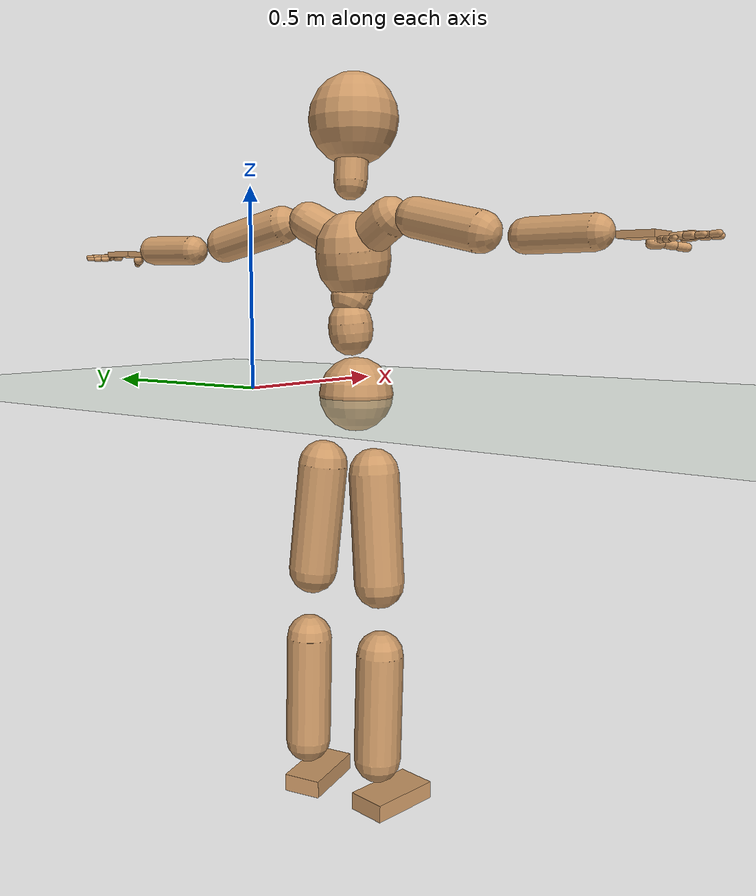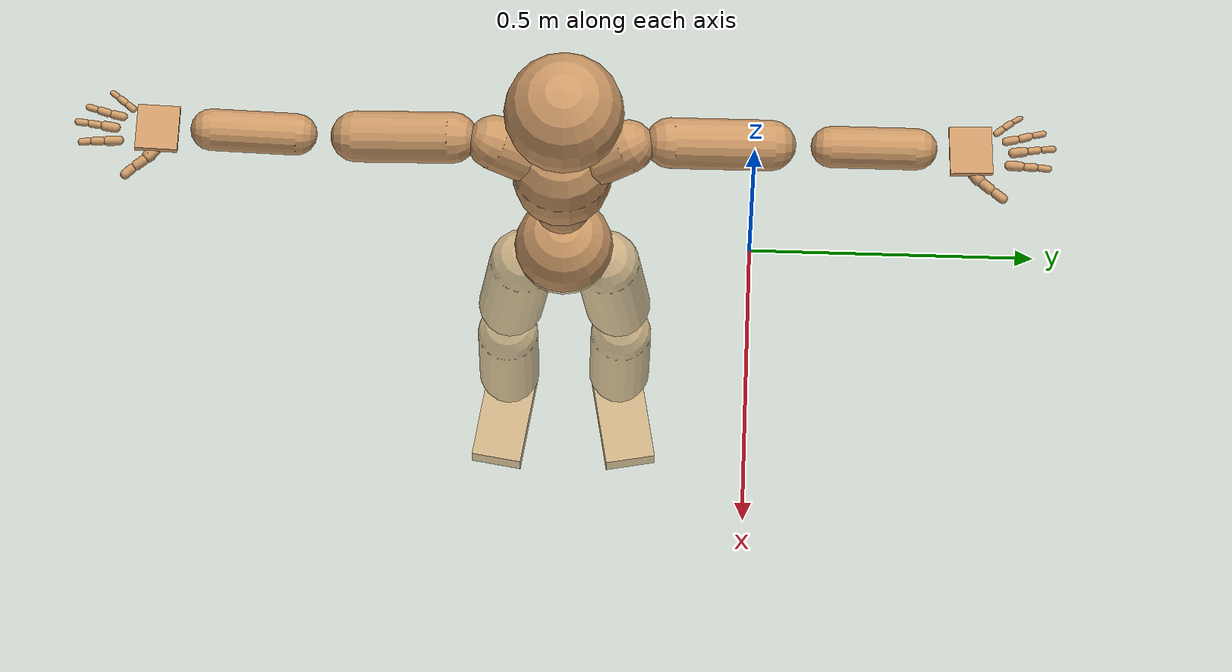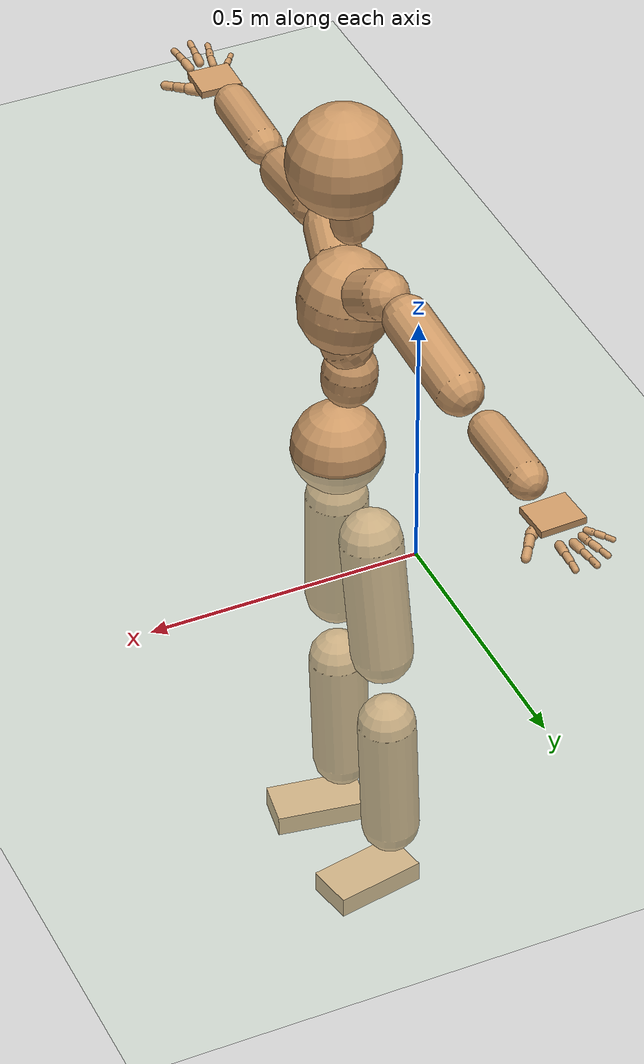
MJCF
<mujoco model="humanoid">
  <compiler coordinate="local" angle="radian"/>
  <default>
    <joint damping="0.0" armature="0.01" stiffness="0.0" limited="true"/>
    <geom conaffinity="1" condim="3" contype="7" margin="0.001" rgba="0.8 0.6 .4 1"/>
  </default>
  <asset>
    <texture type="skybox" builtin="gradient" rgb1=".4 .5 .6" rgb2="0 0 0" width="100" height="100"/>
    <texture builtin="flat" height="1278" mark="cross" markrgb="1 1 1" name="texgeom" random="0.01" rgb1="0.8 0.6 0.4" rgb2="0.8 0.6 0.4" type="cube" width="127"/>
    <texture builtin="checker" height="100" name="texplane" rgb1="0 0 0" rgb2="0.8 0.8 0.8" type="2d" width="100"/>
    <material name="MatPlane" reflectance="0.5" shininess="1" specular="1" texrepeat="60 60" texture="texplane"/>
    <material name="geom" texture="texgeom" texuniform="true"/>
  </asset>
  <worldbody>
    <light cutoff="100" diffuse="1 1 1" dir="-0 0 -1.3" directional="true" exponent="1" pos="0 0 1.3" specular=".1 .1 .1"/>
    <geom conaffinity="1" condim="3" name="floor" pos="0 0 0" rgba="0.8 0.9 0.8 1" size="100 100 .2" type="plane" material="MatPlane"/>
    <body name="Pelvis" pos="0.0007 -0.3269 0.0049">
      <freejoint name="Pelvis"/>
      <geom type="sphere" contype="1" conaffinity="1" density="500" size="0.0870" pos="0.0000 0.0000 0.0000" name="Pelvis"/>
      <body name="L_Hip" pos="-0.027 0.0674 -0.0851">
        <joint name="L_Hip_x" type="hinge" pos="0 0 0" axis="1 0 0" stiffness="800" damping="80" armature="0.02" range="-180.0000 180.0000"/>
        <joint name="L_Hip_y" type="hinge" pos="0 0 0" axis="0 1 0" stiffness="800" damping="80" armature="0.02" range="-180.0000 180.0000"/>
        <joint name="L_Hip_z" type="hinge" pos="0 0 0" axis="0 0 1" stiffness="800" damping="80" armature="0.02" range="-180.0000 180.0000"/>
        <geom type="capsule" contype="1" conaffinity="1" density="500" fromto="-0.0044 0.0071 -0.0858 -0.0175 0.0282 -0.3432" size="0.059" name="L_Hip"/>
        <body name="L_Knee" pos="-0.0219 0.0353 -0.429">
          <joint name="L_Knee_x" type="hinge" pos="0 0 0" axis="1 0 0" stiffness="800" damping="80" armature="0.02" range="-180.0000 180.0000"/>
          <joint name="L_Knee_y" type="hinge" pos="0 0 0" axis="0 1 0" stiffness="800" damping="80" armature="0.02" range="-180.0000 180.0000"/>
          <joint name="L_Knee_z" type="hinge" pos="0 0 0" axis="0 0 1" stiffness="800" damping="80" armature="0.02" range="-180.0000 180.0000"/>
          <geom type="capsule" contype="1" conaffinity="1" density="500" fromto="-0.0034 -0.0010 -0.0864 -0.0136 -0.0038 -0.3455" size="0.0554" name="L_Knee"/>
          <body name="L_Ankle" pos="-0.017 -0.0048 -0.4319">
            <joint name="L_Ankle_x" type="hinge" pos="0 0 0" axis="1 0 0" stiffness="800" damping="80" armature="0.02" range="-180.0000 180.0000"/>
            <joint name="L_Ankle_y" type="hinge" pos="0 0 0" axis="0 1 0" stiffness="800" damping="80" armature="0.02" range="-180.0000 180.0000"/>
            <joint name="L_Ankle_z" type="hinge" pos="0 0 0" axis="0 0 1" stiffness="800" damping="80" armature="0.02" range="-180.0000 180.0000"/>
            <geom type="box" contype="1" conaffinity="1" density="500" pos="0.0557 0.0104 -0.0255" size="0.0884 0.0461 0.0208" quat="0.9957 0.0000 0.0000 0.0924" name="L_Ankle"/>
            <body name="L_Toe" pos="0.1115 0.0209 -0.051">
              <joint name="L_Toe_x" type="hinge" pos="0 0 0" axis="1 0 0" stiffness="500" damping="50" armature="0.02" range="-180.0000 180.0000"/>
              <joint name="L_Toe_y" type="hinge" pos="0 0 0" axis="0 1 0" stiffness="500" damping="50" armature="0.02" range="-180.0000 180.0000"/>
              <joint name="L_Toe_z" type="hinge" pos="0 0 0" axis="0 0 1" stiffness="500" damping="50" armature="0.02" range="-180.0000 180.0000"/>
              <geom type="box" contype="1" conaffinity="1" density="500" pos="0.0000 0.0000 0.0250" size="0.0009 0.0023 0.001" quat="0.9951 0.0000 0.0000 0.0992" name="L_Toe"/>
            </body>
          </body>
        </body>
      </body>
      <body name="R_Hip" pos="-0.0285 -0.0673 -0.092">
        <joint name="R_Hip_x" type="hinge" pos="0 0 0" axis="1 0 0" stiffness="800" damping="80" armature="0.02" range="-180.0000 180.0000"/>
        <joint name="R_Hip_y" type="hinge" pos="0 0 0" axis="0 1 0" stiffness="800" damping="80" armature="0.02" range="-180.0000 180.0000"/>
        <joint name="R_Hip_z" type="hinge" pos="0 0 0" axis="0 0 1" stiffness="800" damping="80" armature="0.02" range="-180.0000 180.0000"/>
        <geom type="capsule" contype="1" conaffinity="1" density="500" fromto="-0.0031 -0.0078 -0.0849 -0.0125 -0.0311 -0.3397" size="0.0589" name="R_Hip"/>
        <body name="R_Knee" pos="-0.0157 -0.0388 -0.4246">
          <joint name="R_Knee_x" type="hinge" pos="0 0 0" axis="1 0 0" stiffness="800" damping="80" armature="0.02" range="-180.0000 180.0000"/>
          <joint name="R_Knee_y" type="hinge" pos="0 0 0" axis="0 1 0" stiffness="800" damping="80" armature="0.02" range="-180.0000 180.0000"/>
          <joint name="R_Knee_z" type="hinge" pos="0 0 0" axis="0 0 1" stiffness="800" damping="80" armature="0.02" range="-180.0000 180.0000"/>
          <geom type="capsule" contype="1" conaffinity="1" density="500" fromto="-0.0026 0.0000 -0.0847 -0.0105 0.0001 -0.3386" size="0.0554" name="R_Knee"/>
          <body name="R_Ankle" pos="-0.0131 0.0001 -0.4233">
            <joint name="R_Ankle_x" type="hinge" pos="0 0 0" axis="1 0 0" stiffness="800" damping="80" armature="0.02" range="-180.0000 180.0000"/>
            <joint name="R_Ankle_y" type="hinge" pos="0 0 0" axis="0 1 0" stiffness="800" damping="80" armature="0.02" range="-180.0000 180.0000"/>
            <joint name="R_Ankle_z" type="hinge" pos="0 0 0" axis="0 0 1" stiffness="800" damping="80" armature="0.02" range="-180.0000 180.0000"/>
            <geom type="box" contype="1" conaffinity="1" density="500" pos="0.0524 -0.0082 -0.0272" size="0.0884 0.0461 0.0208" quat="0.9970 0.0000 0.0000 -0.0776" name="R_Ankle"/>
            <body name="R_Toe" pos="0.1048 -0.0164 -0.0544">
              <joint name="R_Toe_x" type="hinge" pos="0 0 0" axis="1 0 0" stiffness="500" damping="50" armature="0.02" range="-180.0000 180.0000"/>
              <joint name="R_Toe_y" type="hinge" pos="0 0 0" axis="0 1 0" stiffness="500" damping="50" armature="0.02" range="-180.0000 180.0000"/>
              <joint name="R_Toe_z" type="hinge" pos="0 0 0" axis="0 0 1" stiffness="500" damping="50" armature="0.02" range="-180.0000 180.0000"/>
              <geom type="box" contype="1" conaffinity="1" density="500" pos="0.0000 0.0000 0.0267" size="0.0009 0.0023 0.001" quat="0.9977 0.0000 0.0000 -0.0671" name="R_Toe"/>
            </body>
          </body>
        </body>
      </body>
      <body name="Torso" pos="-0.0202 -0.0048 0.0979">
        <joint name="Torso_x" type="hinge" pos="0 0 0" axis="1 0 0" stiffness="1000" damping="100" armature="0.02" range="-180.0000 180.0000"/>
        <joint name="Torso_y" type="hinge" pos="0 0 0" axis="0 1 0" stiffness="1000" damping="100" armature="0.02" range="-180.0000 180.0000"/>
        <joint name="Torso_z" type="hinge" pos="0 0 0" axis="0 0 1" stiffness="1000" damping="100" armature="0.02" range="-180.0000 180.0000"/>
        <geom type="capsule" contype="1" conaffinity="1" density="500" fromto="-0.0041 0.0042 0.0670 -0.0027 0.0028 0.0446" size="0.0513" name="Torso"/>
        <body name="Spine" pos="-0.0069 0.007 0.1116">
          <joint name="Spine_x" type="hinge" pos="0 0 0" axis="1 0 0" stiffness="1000" damping="100" armature="0.02" range="-180.0000 180.0000"/>
          <joint name="Spine_y" type="hinge" pos="0 0 0" axis="0 1 0" stiffness="1000" damping="100" armature="0.02" range="-180.0000 180.0000"/>
          <joint name="Spine_z" type="hinge" pos="0 0 0" axis="0 0 1" stiffness="1000" damping="100" armature="0.02" range="-180.0000 180.0000"/>
          <geom type="capsule" contype="1" conaffinity="1" density="500" fromto="0.0133 -0.0022 0.0249 0.0089 -0.0014 0.0166" size="0.0481" name="Spine"/>
          <body name="Chest" pos="0.0222 -0.0036 0.0416">
            <joint name="Chest_x" type="hinge" pos="0 0 0" axis="1 0 0" stiffness="1000" damping="100" armature="0.02" range="-180.0000 180.0000"/>
            <joint name="Chest_y" type="hinge" pos="0 0 0" axis="0 1 0" stiffness="1000" damping="100" armature="0.02" range="-180.0000 180.0000"/>
            <joint name="Chest_z" type="hinge" pos="0 0 0" axis="0 0 1" stiffness="1000" damping="100" armature="0.02" range="-180.0000 180.0000"/>
            <geom type="capsule" contype="1" conaffinity="1" density="500" fromto="-0.0133 -0.0013 0.0818 -0.0089 -0.0009 0.0545" size="0.0862" name="Chest"/>
            <body name="Neck" pos="-0.03 -0.0048 0.1927">
              <joint name="Neck_x" type="hinge" pos="0 0 0" axis="1 0 0" stiffness="500" damping="50" armature="0.02" range="-180.0000 180.0000"/>
              <joint name="Neck_y" type="hinge" pos="0 0 0" axis="0 1 0" stiffness="500" damping="50" armature="0.02" range="-180.0000 180.0000"/>
              <joint name="Neck_z" type="hinge" pos="0 0 0" axis="0 0 1" stiffness="500" damping="50" armature="0.02" range="-180.0000 180.0000"/>
              <geom type="capsule" contype="1" conaffinity="1" density="500" fromto="0.0048 0.0016 0.0352 0.0193 0.0064 0.1410" size="0.0381" name="Neck"/>
              <body name="Head" pos="0.0241 0.0079 0.1762">
                <joint name="Head_x" type="hinge" pos="0 0 0" axis="1 0 0" stiffness="500" damping="50" armature="0.02" range="-180.0000 180.0000"/>
                <joint name="Head_y" type="hinge" pos="0 0 0" axis="0 1 0" stiffness="500" damping="50" armature="0.02" range="-180.0000 180.0000"/>
                <joint name="Head_z" type="hinge" pos="0 0 0" axis="0 0 1" stiffness="500" damping="50" armature="0.02" range="-180.0000 180.0000"/>
                <geom type="sphere" contype="1" conaffinity="1" density="500" size="0.1023" pos="0.0000 0.0000 0.0000" name="Head"/>
              </body>
            </body>
            <body name="L_Thorax" pos="-0.0155 0.0462 0.1103">
              <joint name="L_Thorax_x" type="hinge" pos="0 0 0" axis="1 0 0" stiffness="500" damping="50" armature="0.02" range="-180.0000 180.0000"/>
              <joint name="L_Thorax_y" type="hinge" pos="0 0 0" axis="0 1 0" stiffness="500" damping="50" armature="0.02" range="-180.0000 180.0000"/>
              <joint name="L_Thorax_z" type="hinge" pos="0 0 0" axis="0 0 1" stiffness="500" damping="50" armature="0.02" range="-180.0000 180.0000"/>
              <geom type="capsule" contype="1" conaffinity="1" density="500" fromto="-0.0045 0.0162 0.0090 -0.0179 0.0648 0.0362" size="0.0464" name="L_Thorax"/>
              <body name="L_Shoulder" pos="-0.0224 0.0811 0.0452">
                <joint name="L_Shoulder_x" type="hinge" pos="0 0 0" axis="1 0 0" stiffness="500" damping="50" armature="0.02" range="-180.0000 180.0000"/>
                <joint name="L_Shoulder_y" type="hinge" pos="0 0 0" axis="0 1 0" stiffness="500" damping="50" armature="0.02" range="-180.0000 180.0000"/>
                <joint name="L_Shoulder_z" type="hinge" pos="0 0 0" axis="0 0 1" stiffness="500" damping="50" armature="0.02" range="-180.0000 180.0000"/>
                <geom type="capsule" contype="1" conaffinity="1" density="500" fromto="-0.0054 0.0572 -0.0133 -0.0214 0.2288 -0.0531" size="0.0443" name="L_Shoulder"/>
                <body name="L_Elbow" pos="-0.0268 0.286 -0.0663">
                  <joint name="L_Elbow_x" type="hinge" pos="0 0 0" axis="1 0 0" stiffness="500" damping="50" armature="0.02" range="-720.0000 720.0000"/>
                  <joint name="L_Elbow_y" type="hinge" pos="0 0 0" axis="0 1 0" stiffness="500" damping="50" armature="0.02" range="-720.0000 720.0000"/>
                  <joint name="L_Elbow_z" type="hinge" pos="0 0 0" axis="0 0 1" stiffness="500" damping="50" armature="0.02" range="-720.0000 720.0000"/>
                  <geom type="capsule" contype="1" conaffinity="1" density="500" fromto="0.0004 0.0487 0.0011 0.0016 0.1949 0.0046" size="0.036" name="L_Elbow"/>
                  <body name="L_Wrist" pos="0.002 0.2436 0.0057">
                    <joint name="L_Wrist_x" type="hinge" pos="0 0 0" axis="1 0 0" stiffness="300" damping="30" armature="0.02" range="-180.0000 180.0000"/>
                    <joint name="L_Wrist_y" type="hinge" pos="0 0 0" axis="0 1 0" stiffness="300" damping="30" armature="0.02" range="-180.0000 180.0000"/>
                    <joint name="L_Wrist_z" type="hinge" pos="0 0 0" axis="0 0 1" stiffness="300" damping="30" armature="0.02" range="-180.0000 180.0000"/>
                    <geom type="box" contype="1" conaffinity="1" density="500" pos="-0.0021 0.0453 -0.0090" size="0.0367 0.0427 0.0067" quat="0.7232 0.0000 0.0000 -0.6906" name="L_Wrist"/>
                    <body name="L_Index1" pos="0.019 0.1059 -0.0162">
                      <joint name="L_Index1_x" type="hinge" pos="0 0 0" axis="1 0 0" stiffness="100" damping="10" armature="0.02" range="-180.0000 180.0000"/>
                      <joint name="L_Index1_y" type="hinge" pos="0 0 0" axis="0 1 0" stiffness="100" damping="10" armature="0.02" range="-180.0000 180.0000"/>
                      <joint name="L_Index1_z" type="hinge" pos="0 0 0" axis="0 0 1" stiffness="100" damping="10" armature="0.02" range="-180.0000 180.0000"/>
                      <geom type="capsule" contype="1" conaffinity="1" density="500" fromto="0.0005 0.0063 0.0005 0.0021 0.0253 0.0020" size="0.0084" name="L_Index1"/>
                      <body name="L_Index2" pos="0.0027 0.0316 0.0025">
                        <joint name="L_Index2_x" type="hinge" pos="0 0 0" axis="1 0 0" stiffness="100" damping="10" armature="0.02" range="-180.0000 180.0000"/>
                        <joint name="L_Index2_y" type="hinge" pos="0 0 0" axis="0 1 0" stiffness="100" damping="10" armature="0.02" range="-180.0000 180.0000"/>
                        <joint name="L_Index2_z" type="hinge" pos="0 0 0" axis="0 0 1" stiffness="100" damping="10" armature="0.02" range="-180.0000 180.0000"/>
                        <geom type="capsule" contype="1" conaffinity="1" density="500" fromto="0.0001 0.0045 -0.0003 0.0004 0.0180 -0.0012" size="0.0071" name="L_Index2"/>
                        <body name="L_Index3" pos="0.0005 0.0225 -0.0015">
                          <joint name="L_Index3_x" type="hinge" pos="0 0 0" axis="1 0 0" stiffness="100" damping="10" armature="0.02" range="-180.0000 180.0000"/>
                          <joint name="L_Index3_y" type="hinge" pos="0 0 0" axis="0 1 0" stiffness="100" damping="10" armature="0.02" range="-180.0000 180.0000"/>
                          <joint name="L_Index3_z" type="hinge" pos="0 0 0" axis="0 0 1" stiffness="100" damping="10" armature="0.02" range="-180.0000 180.0000"/>
                          <geom type="capsule" contype="1" conaffinity="1" density="500" fromto="0.0005 0.0049 0.0001 0.0020 0.0196 0.0004" size="0.006" name="L_Index3"/>
                        </body>
                      </body>
                    </body>
                    <body name="L_Middle1" pos="-0.0024 0.1129 -0.0139">
                      <joint name="L_Middle1_x" type="hinge" pos="0 0 0" axis="1 0 0" stiffness="100" damping="10" armature="0.02" range="-180.0000 180.0000"/>
                      <joint name="L_Middle1_y" type="hinge" pos="0 0 0" axis="0 1 0" stiffness="100" damping="10" armature="0.02" range="-180.0000 180.0000"/>
                      <joint name="L_Middle1_z" type="hinge" pos="0 0 0" axis="0 0 1" stiffness="100" damping="10" armature="0.02" range="-180.0000 180.0000"/>
                      <geom type="capsule" contype="1" conaffinity="1" density="500" fromto="-0.0008 0.0060 0.0002 -0.0032 0.0240 0.0009" size="0.0085" name="L_Middle1"/>
                      <body name="L_Middle2" pos="-0.0039 0.03 0.0012">
                        <joint name="L_Middle2_x" type="hinge" pos="0 0 0" axis="1 0 0" stiffness="100" damping="10" armature="0.02" range="-180.0000 180.0000"/>
                        <joint name="L_Middle2_y" type="hinge" pos="0 0 0" axis="0 1 0" stiffness="100" damping="10" armature="0.02" range="-180.0000 180.0000"/>
                        <joint name="L_Middle2_z" type="hinge" pos="0 0 0" axis="0 0 1" stiffness="100" damping="10" armature="0.02" range="-180.0000 180.0000"/>
                        <geom type="capsule" contype="1" conaffinity="1" density="500" fromto="-0.0007 0.0047 -0.0001 -0.0030 0.0188 -0.0003" size="0.0064" name="L_Middle2"/>
                        <body name="L_Middle3" pos="-0.0037 0.0235 -0.0004">
                          <joint name="L_Middle3_x" type="hinge" pos="0 0 0" axis="1 0 0" stiffness="100" damping="10" armature="0.02" range="-180.0000 180.0000"/>
                          <joint name="L_Middle3_y" type="hinge" pos="0 0 0" axis="0 1 0" stiffness="100" damping="10" armature="0.02" range="-180.0000 180.0000"/>
                          <joint name="L_Middle3_z" type="hinge" pos="0 0 0" axis="0 0 1" stiffness="100" damping="10" armature="0.02" range="-180.0000 180.0000"/>
                          <geom type="capsule" contype="1" conaffinity="1" density="500" fromto="-0.0003 0.0051 0.0003 -0.0014 0.0204 0.0013" size="0.0058" name="L_Middle3"/>
                        </body>
                      </body>
                    </body>
                    <body name="L_Pinky1" pos="-0.0389 0.0875 -0.0207">
                      <joint name="L_Pinky1_x" type="hinge" pos="0 0 0" axis="1 0 0" stiffness="100" damping="10" armature="0.02" range="-180.0000 180.0000"/>
                      <joint name="L_Pinky1_y" type="hinge" pos="0 0 0" axis="0 1 0" stiffness="100" damping="10" armature="0.02" range="-180.0000 180.0000"/>
                      <joint name="L_Pinky1_z" type="hinge" pos="0 0 0" axis="0 0 1" stiffness="100" damping="10" armature="0.02" range="-180.0000 180.0000"/>
                      <geom type="capsule" contype="1" conaffinity="1" density="500" fromto="-0.0023 0.0029 -0.0001 -0.0094 0.0115 -0.0003" size="0.0061" name="L_Pinky1"/>
                      <body name="L_Pinky2" pos="-0.0117 0.0144 -0.0003">
                        <joint name="L_Pinky2_x" type="hinge" pos="0 0 0" axis="1 0 0" stiffness="100" damping="10" armature="0.02" range="-180.0000 180.0000"/>
                        <joint name="L_Pinky2_y" type="hinge" pos="0 0 0" axis="0 1 0" stiffness="100" damping="10" armature="0.02" range="-180.0000 180.0000"/>
                        <joint name="L_Pinky2_z" type="hinge" pos="0 0 0" axis="0 0 1" stiffness="100" damping="10" armature="0.02" range="-180.0000 180.0000"/>
                        <geom type="capsule" contype="1" conaffinity="1" density="500" fromto="-0.0023 0.0029 -0.0001 -0.0093 0.0118 -0.0006" size="0.006" name="L_Pinky2"/>
                        <body name="L_Pinky3" pos="-0.0116 0.0147 -0.0007">
                          <joint name="L_Pinky3_x" type="hinge" pos="0 0 0" axis="1 0 0" stiffness="100" damping="10" armature="0.02" range="-180.0000 180.0000"/>
                          <joint name="L_Pinky3_y" type="hinge" pos="0 0 0" axis="0 1 0" stiffness="100" damping="10" armature="0.02" range="-180.0000 180.0000"/>
                          <joint name="L_Pinky3_z" type="hinge" pos="0 0 0" axis="0 0 1" stiffness="100" damping="10" armature="0.02" range="-180.0000 180.0000"/>
                          <geom type="capsule" contype="1" conaffinity="1" density="500" fromto="-0.0019 0.0033 0.0003 -0.0077 0.0134 0.0010" size="0.0048" name="L_Pinky3"/>
                        </body>
                      </body>
                    </body>
                    <body name="L_Ring1" pos="-0.0237 0.1008 -0.0161">
                      <joint name="L_Ring1_x" type="hinge" pos="0 0 0" axis="1 0 0" stiffness="100" damping="10" armature="0.02" range="-180.0000 180.0000"/>
                      <joint name="L_Ring1_y" type="hinge" pos="0 0 0" axis="0 1 0" stiffness="100" damping="10" armature="0.02" range="-180.0000 180.0000"/>
                      <joint name="L_Ring1_z" type="hinge" pos="0 0 0" axis="0 0 1" stiffness="100" damping="10" armature="0.02" range="-180.0000 180.0000"/>
                      <geom type="capsule" contype="1" conaffinity="1" density="500" fromto="-0.0010 0.0055 0.0003 -0.0041 0.0219 0.0013" size="0.0073" name="L_Ring1"/>
                      <body name="L_Ring2" pos="-0.0052 0.0273 0.0017">
                        <joint name="L_Ring2_x" type="hinge" pos="0 0 0" axis="1 0 0" stiffness="100" damping="10" armature="0.02" range="-180.0000 180.0000"/>
                        <joint name="L_Ring2_y" type="hinge" pos="0 0 0" axis="0 1 0" stiffness="100" damping="10" armature="0.02" range="-180.0000 180.0000"/>
                        <joint name="L_Ring2_z" type="hinge" pos="0 0 0" axis="0 0 1" stiffness="100" damping="10" armature="0.02" range="-180.0000 180.0000"/>
                        <geom type="capsule" contype="1" conaffinity="1" density="500" fromto="-0.0014 0.0045 -0.0002 -0.0056 0.0179 -0.0006" size="0.0069" name="L_Ring2"/>
                        <body name="L_Ring3" pos="-0.0071 0.0224 -0.0008">
                          <joint name="L_Ring3_x" type="hinge" pos="0 0 0" axis="1 0 0" stiffness="100" damping="10" armature="0.02" range="-180.0000 180.0000"/>
                          <joint name="L_Ring3_y" type="hinge" pos="0 0 0" axis="0 1 0" stiffness="100" damping="10" armature="0.02" range="-180.0000 180.0000"/>
                          <joint name="L_Ring3_z" type="hinge" pos="0 0 0" axis="0 0 1" stiffness="100" damping="10" armature="0.02" range="-180.0000 180.0000"/>
                          <geom type="capsule" contype="1" conaffinity="1" density="500" fromto="-0.0010 0.0049 0.0002 -0.0040 0.0195 0.0010" size="0.0055" name="L_Ring3"/>
                        </body>
                      </body>
                    </body>
                    <body name="L_Thumb1" pos="0.0252 0.0457 -0.0229">
                      <joint name="L_Thumb1_x" type="hinge" pos="0 0 0" axis="1 0 0" stiffness="100" damping="10" armature="0.02" range="-180.0000 180.0000"/>
                      <joint name="L_Thumb1_y" type="hinge" pos="0 0 0" axis="0 1 0" stiffness="100" damping="10" armature="0.02" range="-180.0000 180.0000"/>
                      <joint name="L_Thumb1_z" type="hinge" pos="0 0 0" axis="0 0 1" stiffness="100" damping="10" armature="0.02" range="-180.0000 180.0000"/>
                      <geom type="capsule" contype="1" conaffinity="1" density="500" fromto="0.0046 0.0035 0.0001 0.0184 0.0142 0.0003" size="0.0114" name="L_Thumb1"/>
                      <body name="L_Thumb2" pos="0.0231 0.0177 0.0004">
                        <joint name="L_Thumb2_x" type="hinge" pos="0 0 0" axis="1 0 0" stiffness="100" damping="10" armature="0.02" range="-180.0000 180.0000"/>
                        <joint name="L_Thumb2_y" type="hinge" pos="0 0 0" axis="0 1 0" stiffness="100" damping="10" armature="0.02" range="-180.0000 180.0000"/>
                        <joint name="L_Thumb2_z" type="hinge" pos="0 0 0" axis="0 0 1" stiffness="100" damping="10" armature="0.02" range="-180.0000 180.0000"/>
                        <geom type="capsule" contype="1" conaffinity="1" density="500" fromto="0.0028 0.0042 -0.0011 0.0114 0.0167 -0.0044" size="0.009" name="L_Thumb2"/>
                        <body name="L_Thumb3" pos="0.0142 0.0209 -0.0055">
                          <joint name="L_Thumb3_x" type="hinge" pos="0 0 0" axis="1 0 0" stiffness="100" damping="10" armature="0.02" range="-180.0000 180.0000"/>
                          <joint name="L_Thumb3_y" type="hinge" pos="0 0 0" axis="0 1 0" stiffness="100" damping="10" armature="0.02" range="-180.0000 180.0000"/>
                          <joint name="L_Thumb3_z" type="hinge" pos="0 0 0" axis="0 0 1" stiffness="100" damping="10" armature="0.02" range="-180.0000 180.0000"/>
                          <geom type="capsule" contype="1" conaffinity="1" density="500" fromto="0.0032 0.0046 -0.0007 0.0130 0.0183 -0.0028" size="0.0083" name="L_Thumb3"/>
                        </body>
                      </body>
                    </body>
                  </body>
                </body>
              </body>
            </body>
            <body name="R_Thorax" pos="-0.0209 -0.0479 0.1059">
              <joint name="R_Thorax_x" type="hinge" pos="0 0 0" axis="1 0 0" stiffness="500" damping="50" armature="0.02" range="-180.0000 180.0000"/>
              <joint name="R_Thorax_y" type="hinge" pos="0 0 0" axis="0 1 0" stiffness="500" damping="50" armature="0.02" range="-180.0000 180.0000"/>
              <joint name="R_Thorax_z" type="hinge" pos="0 0 0" axis="0 0 1" stiffness="500" damping="50" armature="0.02" range="-180.0000 180.0000"/>
              <geom type="capsule" contype="1" conaffinity="1" density="500" fromto="-0.0034 -0.0174 0.0097 -0.0137 -0.0698 0.0388" size="0.0473" name="R_Thorax"/>
              <body name="R_Shoulder" pos="-0.0171 -0.0872 0.0484">
                <joint name="R_Shoulder_x" type="hinge" pos="0 0 0" axis="1 0 0" stiffness="500" damping="50" armature="0.02" range="-180.0000 180.0000"/>
                <joint name="R_Shoulder_y" type="hinge" pos="0 0 0" axis="0 1 0" stiffness="500" damping="50" armature="0.02" range="-180.0000 180.0000"/>
                <joint name="R_Shoulder_z" type="hinge" pos="0 0 0" axis="0 0 1" stiffness="500" damping="50" armature="0.02" range="-180.0000 180.0000"/>
                <geom type="capsule" contype="1" conaffinity="1" density="500" fromto="-0.0039 -0.0553 -0.0123 -0.0154 -0.2214 -0.0492" size="0.0446" name="R_Shoulder"/>
                <body name="R_Elbow" pos="-0.0193 -0.2767 -0.0615">
                  <joint name="R_Elbow_x" type="hinge" pos="0 0 0" axis="1 0 0" stiffness="500" damping="50" armature="0.02" range="-720.0000 720.0000"/>
                  <joint name="R_Elbow_y" type="hinge" pos="0 0 0" axis="0 1 0" stiffness="500" damping="50" armature="0.02" range="-720.0000 720.0000"/>
                  <joint name="R_Elbow_z" type="hinge" pos="0 0 0" axis="0 0 1" stiffness="500" damping="50" armature="0.02" range="-720.0000 720.0000"/>
                  <geom type="capsule" contype="1" conaffinity="1" density="500" fromto="-0.0013 -0.0490 0.0003 -0.0053 -0.1958 0.0012" size="0.0362" name="R_Elbow"/>
                  <body name="R_Wrist" pos="-0.0067 -0.2448 0.0015">
                    <joint name="R_Wrist_x" type="hinge" pos="0 0 0" axis="1 0 0" stiffness="300" damping="30" armature="0.02" range="-180.0000 180.0000"/>
                    <joint name="R_Wrist_y" type="hinge" pos="0 0 0" axis="0 1 0" stiffness="300" damping="30" armature="0.02" range="-180.0000 180.0000"/>
                    <joint name="R_Wrist_z" type="hinge" pos="0 0 0" axis="0 0 1" stiffness="300" damping="30" armature="0.02" range="-180.0000 180.0000"/>
                    <geom type="box" contype="1" conaffinity="1" density="500" pos="-0.0014 -0.0446 -0.0087" size="0.0367 0.04 0.0069" quat="0.7184 0.0000 0.0000 0.6957" name="R_Wrist"/>
                    <body name="R_Index1" pos="0.0203 -0.1045 -0.0155">
                      <joint name="R_Index1_x" type="hinge" pos="0 0 0" axis="1 0 0" stiffness="100" damping="10" armature="0.02" range="-180.0000 180.0000"/>
                      <joint name="R_Index1_y" type="hinge" pos="0 0 0" axis="0 1 0" stiffness="100" damping="10" armature="0.02" range="-180.0000 180.0000"/>
                      <joint name="R_Index1_z" type="hinge" pos="0 0 0" axis="0 0 1" stiffness="100" damping="10" armature="0.02" range="-180.0000 180.0000"/>
                      <geom type="capsule" contype="1" conaffinity="1" density="500" fromto="0.0005 -0.0063 0.0005 0.0021 -0.0253 0.0020" size="0.0084" name="R_Index1"/>
                      <body name="R_Index2" pos="0.0027 -0.0316 0.0025">
                        <joint name="R_Index2_x" type="hinge" pos="0 0 0" axis="1 0 0" stiffness="100" damping="10" armature="0.02" range="-180.0000 180.0000"/>
                        <joint name="R_Index2_y" type="hinge" pos="0 0 0" axis="0 1 0" stiffness="100" damping="10" armature="0.02" range="-180.0000 180.0000"/>
                        <joint name="R_Index2_z" type="hinge" pos="0 0 0" axis="0 0 1" stiffness="100" damping="10" armature="0.02" range="-180.0000 180.0000"/>
                        <geom type="capsule" contype="1" conaffinity="1" density="500" fromto="0.0001 -0.0045 -0.0003 0.0004 -0.0180 -0.0012" size="0.0071" name="R_Index2"/>
                        <body name="R_Index3" pos="0.0005 -0.0225 -0.0015">
                          <joint name="R_Index3_x" type="hinge" pos="0 0 0" axis="1 0 0" stiffness="100" damping="10" armature="0.02" range="-180.0000 180.0000"/>
                          <joint name="R_Index3_y" type="hinge" pos="0 0 0" axis="0 1 0" stiffness="100" damping="10" armature="0.02" range="-180.0000 180.0000"/>
                          <joint name="R_Index3_z" type="hinge" pos="0 0 0" axis="0 0 1" stiffness="100" damping="10" armature="0.02" range="-180.0000 180.0000"/>
                          <geom type="capsule" contype="1" conaffinity="1" density="500" fromto="0.0005 -0.0041 0.0001 0.0020 -0.0164 0.0004" size="0.0063" name="R_Index3"/>
                        </body>
                      </body>
                    </body>
                    <body name="R_Middle1" pos="-0.0011 -0.1115 -0.0132">
                      <joint name="R_Middle1_x" type="hinge" pos="0 0 0" axis="1 0 0" stiffness="100" damping="10" armature="0.02" range="-180.0000 180.0000"/>
                      <joint name="R_Middle1_y" type="hinge" pos="0 0 0" axis="0 1 0" stiffness="100" damping="10" armature="0.02" range="-180.0000 180.0000"/>
                      <joint name="R_Middle1_z" type="hinge" pos="0 0 0" axis="0 0 1" stiffness="100" damping="10" armature="0.02" range="-180.0000 180.0000"/>
                      <geom type="capsule" contype="1" conaffinity="1" density="500" fromto="-0.0008 -0.0060 0.0002 -0.0032 -0.0240 0.0009" size="0.0085" name="R_Middle1"/>
                      <body name="R_Middle2" pos="-0.0039 -0.03 0.0012">
                        <joint name="R_Middle2_x" type="hinge" pos="0 0 0" axis="1 0 0" stiffness="100" damping="10" armature="0.02" range="-180.0000 180.0000"/>
                        <joint name="R_Middle2_y" type="hinge" pos="0 0 0" axis="0 1 0" stiffness="100" damping="10" armature="0.02" range="-180.0000 180.0000"/>
                        <joint name="R_Middle2_z" type="hinge" pos="0 0 0" axis="0 0 1" stiffness="100" damping="10" armature="0.02" range="-180.0000 180.0000"/>
                        <geom type="capsule" contype="1" conaffinity="1" density="500" fromto="-0.0007 -0.0047 -0.0001 -0.0030 -0.0188 -0.0003" size="0.0064" name="R_Middle2"/>
                        <body name="R_Middle3" pos="-0.0037 -0.0235 -0.0004">
                          <joint name="R_Middle3_x" type="hinge" pos="0 0 0" axis="1 0 0" stiffness="100" damping="10" armature="0.02" range="-180.0000 180.0000"/>
                          <joint name="R_Middle3_y" type="hinge" pos="0 0 0" axis="0 1 0" stiffness="100" damping="10" armature="0.02" range="-180.0000 180.0000"/>
                          <joint name="R_Middle3_z" type="hinge" pos="0 0 0" axis="0 0 1" stiffness="100" damping="10" armature="0.02" range="-180.0000 180.0000"/>
                          <geom type="capsule" contype="1" conaffinity="1" density="500" fromto="-0.0003 -0.0043 0.0003 -0.0014 -0.0172 0.0013" size="0.0061" name="R_Middle3"/>
                        </body>
                      </body>
                    </body>
                    <body name="R_Pinky1" pos="-0.0376 -0.0862 -0.02">
                      <joint name="R_Pinky1_x" type="hinge" pos="0 0 0" axis="1 0 0" stiffness="100" damping="10" armature="0.02" range="-180.0000 180.0000"/>
                      <joint name="R_Pinky1_y" type="hinge" pos="0 0 0" axis="0 1 0" stiffness="100" damping="10" armature="0.02" range="-180.0000 180.0000"/>
                      <joint name="R_Pinky1_z" type="hinge" pos="0 0 0" axis="0 0 1" stiffness="100" damping="10" armature="0.02" range="-180.0000 180.0000"/>
                      <geom type="capsule" contype="1" conaffinity="1" density="500" fromto="-0.0023 -0.0029 -0.0001 -0.0094 -0.0115 -0.0003" size="0.0061" name="R_Pinky1"/>
                      <body name="R_Pinky2" pos="-0.0117 -0.0144 -0.0003">
                        <joint name="R_Pinky2_x" type="hinge" pos="0 0 0" axis="1 0 0" stiffness="100" damping="10" armature="0.02" range="-180.0000 180.0000"/>
                        <joint name="R_Pinky2_y" type="hinge" pos="0 0 0" axis="0 1 0" stiffness="100" damping="10" armature="0.02" range="-180.0000 180.0000"/>
                        <joint name="R_Pinky2_z" type="hinge" pos="0 0 0" axis="0 0 1" stiffness="100" damping="10" armature="0.02" range="-180.0000 180.0000"/>
                        <geom type="capsule" contype="1" conaffinity="1" density="500" fromto="-0.0023 -0.0029 -0.0001 -0.0093 -0.0118 -0.0006" size="0.006" name="R_Pinky2"/>
                        <body name="R_Pinky3" pos="-0.0116 -0.0147 -0.0007">
                          <joint name="R_Pinky3_x" type="hinge" pos="0 0 0" axis="1 0 0" stiffness="100" damping="10" armature="0.02" range="-180.0000 180.0000"/>
                          <joint name="R_Pinky3_y" type="hinge" pos="0 0 0" axis="0 1 0" stiffness="100" damping="10" armature="0.02" range="-180.0000 180.0000"/>
                          <joint name="R_Pinky3_z" type="hinge" pos="0 0 0" axis="0 0 1" stiffness="100" damping="10" armature="0.02" range="-180.0000 180.0000"/>
                          <geom type="capsule" contype="1" conaffinity="1" density="500" fromto="-0.0019 -0.0025 0.0003 -0.0077 -0.0102 0.0010" size="0.005" name="R_Pinky3"/>
                        </body>
                      </body>
                    </body>
                    <body name="R_Ring1" pos="-0.0224 -0.0995 -0.0155">
                      <joint name="R_Ring1_x" type="hinge" pos="0 0 0" axis="1 0 0" stiffness="100" damping="10" armature="0.02" range="-180.0000 180.0000"/>
                      <joint name="R_Ring1_y" type="hinge" pos="0 0 0" axis="0 1 0" stiffness="100" damping="10" armature="0.02" range="-180.0000 180.0000"/>
                      <joint name="R_Ring1_z" type="hinge" pos="0 0 0" axis="0 0 1" stiffness="100" damping="10" armature="0.02" range="-180.0000 180.0000"/>
                      <geom type="capsule" contype="1" conaffinity="1" density="500" fromto="-0.0010 -0.0055 0.0003 -0.0041 -0.0219 0.0013" size="0.0073" name="R_Ring1"/>
                      <body name="R_Ring2" pos="-0.0052 -0.0273 0.0017">
                        <joint name="R_Ring2_x" type="hinge" pos="0 0 0" axis="1 0 0" stiffness="100" damping="10" armature="0.02" range="-180.0000 180.0000"/>
                        <joint name="R_Ring2_y" type="hinge" pos="0 0 0" axis="0 1 0" stiffness="100" damping="10" armature="0.02" range="-180.0000 180.0000"/>
                        <joint name="R_Ring2_z" type="hinge" pos="0 0 0" axis="0 0 1" stiffness="100" damping="10" armature="0.02" range="-180.0000 180.0000"/>
                        <geom type="capsule" contype="1" conaffinity="1" density="500" fromto="-0.0014 -0.0045 -0.0002 -0.0056 -0.0179 -0.0006" size="0.0069" name="R_Ring2"/>
                        <body name="R_Ring3" pos="-0.0071 -0.0224 -0.0008">
                          <joint name="R_Ring3_x" type="hinge" pos="0 0 0" axis="1 0 0" stiffness="100" damping="10" armature="0.02" range="-180.0000 180.0000"/>
                          <joint name="R_Ring3_y" type="hinge" pos="0 0 0" axis="0 1 0" stiffness="100" damping="10" armature="0.02" range="-180.0000 180.0000"/>
                          <joint name="R_Ring3_z" type="hinge" pos="0 0 0" axis="0 0 1" stiffness="100" damping="10" armature="0.02" range="-180.0000 180.0000"/>
                          <geom type="capsule" contype="1" conaffinity="1" density="500" fromto="-0.0010 -0.0041 0.0002 -0.0040 -0.0163 0.0010" size="0.0057" name="R_Ring3"/>
                        </body>
                      </body>
                    </body>
                    <body name="R_Thumb1" pos="0.0265 -0.0444 -0.0223">
                      <joint name="R_Thumb1_x" type="hinge" pos="0 0 0" axis="1 0 0" stiffness="100" damping="10" armature="0.02" range="-180.0000 180.0000"/>
                      <joint name="R_Thumb1_y" type="hinge" pos="0 0 0" axis="0 1 0" stiffness="100" damping="10" armature="0.02" range="-180.0000 180.0000"/>
                      <joint name="R_Thumb1_z" type="hinge" pos="0 0 0" axis="0 0 1" stiffness="100" damping="10" armature="0.02" range="-180.0000 180.0000"/>
                      <geom type="capsule" contype="1" conaffinity="1" density="500" fromto="0.0046 -0.0035 0.0001 0.0184 -0.0142 0.0003" size="0.0114" name="R_Thumb1"/>
                      <body name="R_Thumb2" pos="0.0231 -0.0177 0.0004">
                        <joint name="R_Thumb2_x" type="hinge" pos="0 0 0" axis="1 0 0" stiffness="100" damping="10" armature="0.02" range="-180.0000 180.0000"/>
                        <joint name="R_Thumb2_y" type="hinge" pos="0 0 0" axis="0 1 0" stiffness="100" damping="10" armature="0.02" range="-180.0000 180.0000"/>
                        <joint name="R_Thumb2_z" type="hinge" pos="0 0 0" axis="0 0 1" stiffness="100" damping="10" armature="0.02" range="-180.0000 180.0000"/>
                        <geom type="capsule" contype="1" conaffinity="1" density="500" fromto="0.0028 -0.0042 -0.0011 0.0114 -0.0167 -0.0044" size="0.009" name="R_Thumb2"/>
                        <body name="R_Thumb3" pos="0.0142 -0.0209 -0.0055">
                          <joint name="R_Thumb3_x" type="hinge" pos="0 0 0" axis="1 0 0" stiffness="100" damping="10" armature="0.02" range="-180.0000 180.0000"/>
                          <joint name="R_Thumb3_y" type="hinge" pos="0 0 0" axis="0 1 0" stiffness="100" damping="10" armature="0.02" range="-180.0000 180.0000"/>
                          <joint name="R_Thumb3_z" type="hinge" pos="0 0 0" axis="0 0 1" stiffness="100" damping="10" armature="0.02" range="-180.0000 180.0000"/>
                          <geom type="capsule" contype="1" conaffinity="1" density="500" fromto="0.0032 -0.0038 -0.0007 0.0130 -0.0151 -0.0028" size="0.0085" name="R_Thumb3"/>
                        </body>
                      </body>
                    </body>
                  </body>
                </body>
              </body>
            </body>
          </body>
        </body>
      </body>
    </body>
  </worldbody>
  <actuator>
    <motor name="L_Hip_x" joint="L_Hip_x" gear="500"/>
    <motor name="L_Hip_y" joint="L_Hip_y" gear="500"/>
    <motor name="L_Hip_z" joint="L_Hip_z" gear="500"/>
    <motor name="L_Knee_x" joint="L_Knee_x" gear="500"/>
    <motor name="L_Knee_y" joint="L_Knee_y" gear="500"/>
    <motor name="L_Knee_z" joint="L_Knee_z" gear="500"/>
    <motor name="L_Ankle_x" joint="L_Ankle_x" gear="500"/>
    <motor name="L_Ankle_y" joint="L_Ankle_y" gear="500"/>
    <motor name="L_Ankle_z" joint="L_Ankle_z" gear="500"/>
    <motor name="L_Toe_x" joint="L_Toe_x" gear="500"/>
    <motor name="L_Toe_y" joint="L_Toe_y" gear="500"/>
    <motor name="L_Toe_z" joint="L_Toe_z" gear="500"/>
    <motor name="R_Hip_x" joint="R_Hip_x" gear="500"/>
    <motor name="R_Hip_y" joint="R_Hip_y" gear="500"/>
    <motor name="R_Hip_z" joint="R_Hip_z" gear="500"/>
    <motor name="R_Knee_x" joint="R_Knee_x" gear="500"/>
    <motor name="R_Knee_y" joint="R_Knee_y" gear="500"/>
    <motor name="R_Knee_z" joint="R_Knee_z" gear="500"/>
    <motor name="R_Ankle_x" joint="R_Ankle_x" gear="500"/>
    <motor name="R_Ankle_y" joint="R_Ankle_y" gear="500"/>
    <motor name="R_Ankle_z" joint="R_Ankle_z" gear="500"/>
    <motor name="R_Toe_x" joint="R_Toe_x" gear="500"/>
    <motor name="R_Toe_y" joint="R_Toe_y" gear="500"/>
    <motor name="R_Toe_z" joint="R_Toe_z" gear="500"/>
    <motor name="Torso_x" joint="Torso_x" gear="500"/>
    <motor name="Torso_y" joint="Torso_y" gear="500"/>
    <motor name="Torso_z" joint="Torso_z" gear="500"/>
    <motor name="Spine_x" joint="Spine_x" gear="500"/>
    <motor name="Spine_y" joint="Spine_y" gear="500"/>
    <motor name="Spine_z" joint="Spine_z" gear="500"/>
    <motor name="Chest_x" joint="Chest_x" gear="500"/>
    <motor name="Chest_y" joint="Chest_y" gear="500"/>
    <motor name="Chest_z" joint="Chest_z" gear="500"/>
    <motor name="Neck_x" joint="Neck_x" gear="500"/>
    <motor name="Neck_y" joint="Neck_y" gear="500"/>
    <motor name="Neck_z" joint="Neck_z" gear="500"/>
    <motor name="Head_x" joint="Head_x" gear="500"/>
    <motor name="Head_y" joint="Head_y" gear="500"/>
    <motor name="Head_z" joint="Head_z" gear="500"/>
    <motor name="L_Thorax_x" joint="L_Thorax_x" gear="500"/>
    <motor name="L_Thorax_y" joint="L_Thorax_y" gear="500"/>
    <motor name="L_Thorax_z" joint="L_Thorax_z" gear="500"/>
    <motor name="L_Shoulder_x" joint="L_Shoulder_x" gear="500"/>
    <motor name="L_Shoulder_y" joint="L_Shoulder_y" gear="500"/>
    <motor name="L_Shoulder_z" joint="L_Shoulder_z" gear="500"/>
    <motor name="L_Elbow_x" joint="L_Elbow_x" gear="500"/>
    <motor name="L_Elbow_y" joint="L_Elbow_y" gear="500"/>
    <motor name="L_Elbow_z" joint="L_Elbow_z" gear="500"/>
    <motor name="L_Wrist_x" joint="L_Wrist_x" gear="500"/>
    <motor name="L_Wrist_y" joint="L_Wrist_y" gear="500"/>
    <motor name="L_Wrist_z" joint="L_Wrist_z" gear="500"/>
    <motor name="L_Index1_x" joint="L_Index1_x" gear="500"/>
    <motor name="L_Index1_y" joint="L_Index1_y" gear="500"/>
    <motor name="L_Index1_z" joint="L_Index1_z" gear="500"/>
    <motor name="L_Index2_x" joint="L_Index2_x" gear="500"/>
    <motor name="L_Index2_y" joint="L_Index2_y" gear="500"/>
    <motor name="L_Index2_z" joint="L_Index2_z" gear="500"/>
    <motor name="L_Index3_x" joint="L_Index3_x" gear="500"/>
    <motor name="L_Index3_y" joint="L_Index3_y" gear="500"/>
    <motor name="L_Index3_z" joint="L_Index3_z" gear="500"/>
    <motor name="L_Middle1_x" joint="L_Middle1_x" gear="500"/>
    <motor name="L_Middle1_y" joint="L_Middle1_y" gear="500"/>
    <motor name="L_Middle1_z" joint="L_Middle1_z" gear="500"/>
    <motor name="L_Middle2_x" joint="L_Middle2_x" gear="500"/>
    <motor name="L_Middle2_y" joint="L_Middle2_y" gear="500"/>
    <motor name="L_Middle2_z" joint="L_Middle2_z" gear="500"/>
    <motor name="L_Middle3_x" joint="L_Middle3_x" gear="500"/>
    <motor name="L_Middle3_y" joint="L_Middle3_y" gear="500"/>
    <motor name="L_Middle3_z" joint="L_Middle3_z" gear="500"/>
    <motor name="L_Pinky1_x" joint="L_Pinky1_x" gear="500"/>
    <motor name="L_Pinky1_y" joint="L_Pinky1_y" gear="500"/>
    <motor name="L_Pinky1_z" joint="L_Pinky1_z" gear="500"/>
    <motor name="L_Pinky2_x" joint="L_Pinky2_x" gear="500"/>
    <motor name="L_Pinky2_y" joint="L_Pinky2_y" gear="500"/>
    <motor name="L_Pinky2_z" joint="L_Pinky2_z" gear="500"/>
    <motor name="L_Pinky3_x" joint="L_Pinky3_x" gear="500"/>
    <motor name="L_Pinky3_y" joint="L_Pinky3_y" gear="500"/>
    <motor name="L_Pinky3_z" joint="L_Pinky3_z" gear="500"/>
    <motor name="L_Ring1_x" joint="L_Ring1_x" gear="500"/>
    <motor name="L_Ring1_y" joint="L_Ring1_y" gear="500"/>
    <motor name="L_Ring1_z" joint="L_Ring1_z" gear="500"/>
    <motor name="L_Ring2_x" joint="L_Ring2_x" gear="500"/>
    <motor name="L_Ring2_y" joint="L_Ring2_y" gear="500"/>
    <motor name="L_Ring2_z" joint="L_Ring2_z" gear="500"/>
    <motor name="L_Ring3_x" joint="L_Ring3_x" gear="500"/>
    <motor name="L_Ring3_y" joint="L_Ring3_y" gear="500"/>
    <motor name="L_Ring3_z" joint="L_Ring3_z" gear="500"/>
    <motor name="L_Thumb1_x" joint="L_Thumb1_x" gear="500"/>
    <motor name="L_Thumb1_y" joint="L_Thumb1_y" gear="500"/>
    <motor name="L_Thumb1_z" joint="L_Thumb1_z" gear="500"/>
    <motor name="L_Thumb2_x" joint="L_Thumb2_x" gear="500"/>
    <motor name="L_Thumb2_y" joint="L_Thumb2_y" gear="500"/>
    <motor name="L_Thumb2_z" joint="L_Thumb2_z" gear="500"/>
    <motor name="L_Thumb3_x" joint="L_Thumb3_x" gear="500"/>
    <motor name="L_Thumb3_y" joint="L_Thumb3_y" gear="500"/>
    <motor name="L_Thumb3_z" joint="L_Thumb3_z" gear="500"/>
    <motor name="R_Thorax_x" joint="R_Thorax_x" gear="500"/>
    <motor name="R_Thorax_y" joint="R_Thorax_y" gear="500"/>
    <motor name="R_Thorax_z" joint="R_Thorax_z" gear="500"/>
    <motor name="R_Shoulder_x" joint="R_Shoulder_x" gear="500"/>
    <motor name="R_Shoulder_y" joint="R_Shoulder_y" gear="500"/>
    <motor name="R_Shoulder_z" joint="R_Shoulder_z" gear="500"/>
    <motor name="R_Elbow_x" joint="R_Elbow_x" gear="500"/>
    <motor name="R_Elbow_y" joint="R_Elbow_y" gear="500"/>
    <motor name="R_Elbow_z" joint="R_Elbow_z" gear="500"/>
    <motor name="R_Wrist_x" joint="R_Wrist_x" gear="500"/>
    <motor name="R_Wrist_y" joint="R_Wrist_y" gear="500"/>
    <motor name="R_Wrist_z" joint="R_Wrist_z" gear="500"/>
    <motor name="R_Index1_x" joint="R_Index1_x" gear="500"/>
    <motor name="R_Index1_y" joint="R_Index1_y" gear="500"/>
    <motor name="R_Index1_z" joint="R_Index1_z" gear="500"/>
    <motor name="R_Index2_x" joint="R_Index2_x" gear="500"/>
    <motor name="R_Index2_y" joint="R_Index2_y" gear="500"/>
    <motor name="R_Index2_z" joint="R_Index2_z" gear="500"/>
    <motor name="R_Index3_x" joint="R_Index3_x" gear="500"/>
    <motor name="R_Index3_y" joint="R_Index3_y" gear="500"/>
    <motor name="R_Index3_z" joint="R_Index3_z" gear="500"/>
    <motor name="R_Middle1_x" joint="R_Middle1_x" gear="500"/>
    <motor name="R_Middle1_y" joint="R_Middle1_y" gear="500"/>
    <motor name="R_Middle1_z" joint="R_Middle1_z" gear="500"/>
    <motor name="R_Middle2_x" joint="R_Middle2_x" gear="500"/>
    <motor name="R_Middle2_y" joint="R_Middle2_y" gear="500"/>
    <motor name="R_Middle2_z" joint="R_Middle2_z" gear="500"/>
    <motor name="R_Middle3_x" joint="R_Middle3_x" gear="500"/>
    <motor name="R_Middle3_y" joint="R_Middle3_y" gear="500"/>
    <motor name="R_Middle3_z" joint="R_Middle3_z" gear="500"/>
    <motor name="R_Pinky1_x" joint="R_Pinky1_x" gear="500"/>
    <motor name="R_Pinky1_y" joint="R_Pinky1_y" gear="500"/>
    <motor name="R_Pinky1_z" joint="R_Pinky1_z" gear="500"/>
    <motor name="R_Pinky2_x" joint="R_Pinky2_x" gear="500"/>
    <motor name="R_Pinky2_y" joint="R_Pinky2_y" gear="500"/>
    <motor name="R_Pinky2_z" joint="R_Pinky2_z" gear="500"/>
    <motor name="R_Pinky3_x" joint="R_Pinky3_x" gear="500"/>
    <motor name="R_Pinky3_y" joint="R_Pinky3_y" gear="500"/>
    <motor name="R_Pinky3_z" joint="R_Pinky3_z" gear="500"/>
    <motor name="R_Ring1_x" joint="R_Ring1_x" gear="500"/>
    <motor name="R_Ring1_y" joint="R_Ring1_y" gear="500"/>
    <motor name="R_Ring1_z" joint="R_Ring1_z" gear="500"/>
    <motor name="R_Ring2_x" joint="R_Ring2_x" gear="500"/>
    <motor name="R_Ring2_y" joint="R_Ring2_y" gear="500"/>
    <motor name="R_Ring2_z" joint="R_Ring2_z" gear="500"/>
    <motor name="R_Ring3_x" joint="R_Ring3_x" gear="500"/>
    <motor name="R_Ring3_y" joint="R_Ring3_y" gear="500"/>
    <motor name="R_Ring3_z" joint="R_Ring3_z" gear="500"/>
    <motor name="R_Thumb1_x" joint="R_Thumb1_x" gear="500"/>
    <motor name="R_Thumb1_y" joint="R_Thumb1_y" gear="500"/>
    <motor name="R_Thumb1_z" joint="R_Thumb1_z" gear="500"/>
    <motor name="R_Thumb2_x" joint="R_Thumb2_x" gear="500"/>
    <motor name="R_Thumb2_y" joint="R_Thumb2_y" gear="500"/>
    <motor name="R_Thumb2_z" joint="R_Thumb2_z" gear="500"/>
    <motor name="R_Thumb3_x" joint="R_Thumb3_x" gear="500"/>
    <motor name="R_Thumb3_y" joint="R_Thumb3_y" gear="500"/>
    <motor name="R_Thumb3_z" joint="R_Thumb3_z" gear="500"/>
  </actuator>
  <contact>
    <exclude body1="Torso" body2="Chest"/>
    <exclude body1="Head" body2="Chest"/>
    <exclude body1="R_Knee" body2="R_Toe"/>
    <exclude body1="R_Knee" body2="L_Ankle"/>
    <exclude body1="R_Knee" body2="L_Toe"/>
    <exclude body1="L_Knee" body2="L_Toe"/>
    <exclude body1="L_Knee" body2="R_Ankle"/>
    <exclude body1="L_Knee" body2="R_Toe"/>
    <exclude body1="L_Shoulder" body2="Chest"/>
    <exclude body1="R_Shoulder" body2="Chest"/>
  </contact>
  <sensor/>
  <size njmax="700" nconmax="700"/>
</mujoco>
